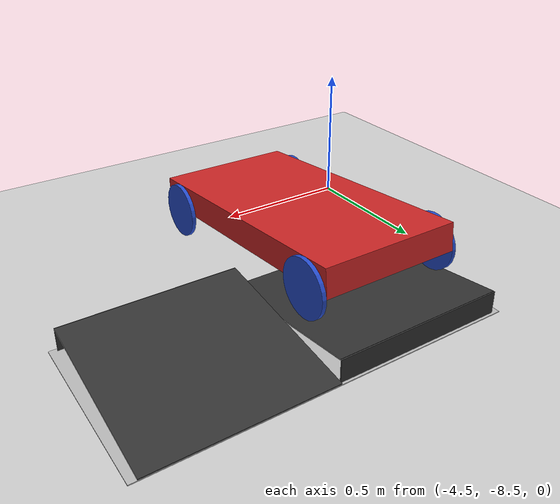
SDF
<sdf version="1.6">
 <world name="default">
  <model name="ground_plane">
   <static>1</static>
   <link name="link">
    <collision name="collision">
     <geometry><plane><normal>0 0 1</normal><size>100 100</size></plane></geometry>
     <surface>
      <contact><collide_bitmask>65535</collide_bitmask></contact>
      <friction><ode><mu>100</mu><mu2>50</mu2></ode></friction>
     </surface>
    </collision>
    <visual name="visual">
     <cast_shadows>0</cast_shadows>
     <geometry><plane><normal>0 0 1</normal><size>100 100</size></plane></geometry>
     <material>
      <script><uri>file://media/materials/scripts/gazebo.material</uri><name>Gazebo/Grey</name></script>
     </material>
    </visual>
   </link>
  </model>
  <model name="4wheeler">
   <link name="link_0">
    <pose>0 0 0.04 0 -0 0</pose>
    <inertial>
     <mass>1</mass>
     <inertia>
      <ixx>0.166667</ixx>
      <ixy>0</ixy>
      <ixz>0</ixz>
      <iyy>0.166667</iyy>
      <iyz>0</iyz>
      <izz>0.166667</izz>
     </inertia>
    </inertial>
    <visual name="visual">
     <geometry><box><size>1 0.5 0.1</size></box></geometry>
     <material>
      <lighting>1</lighting>
      <script><uri>file://media/materials/scripts/gazebo.material</uri><name>Gazebo/RedBright</name></script>
      <shader type="vertex"><normal_map>__default__</normal_map></shader>
     </material>
    </visual>
    <collision name="collision">
     <geometry><box><size>1 0.5 0.1</size></box></geometry>
     <surface>
      <friction>
       <ode><mu>1</mu><mu2>1</mu2><fdir1>0 0 0</fdir1><slip1>0</slip1><slip2>0</slip2></ode>
       <torsional>
        <coefficient>1</coefficient>
        <patch_radius>0</patch_radius>
        <surface_radius>0</surface_radius>
        <use_patch_radius>1</use_patch_radius>
        <ode><slip>0</slip></ode>
       </torsional>
      </friction>
      <bounce><restitution_coefficient>0</restitution_coefficient><threshold>1e+06</threshold></bounce>
      <contact>
       <collide_without_contact>0</collide_without_contact>
       <collide_without_contact_bitmask>1</collide_without_contact_bitmask>
       <collide_bitmask>1</collide_bitmask>
       <ode>
        <soft_cfm>0</soft_cfm>
        <soft_erp>0.2</soft_erp>
        <kp>1e+13</kp>
        <kd>1</kd>
        <max_vel>0.01</max_vel>
        <min_depth>0</min_depth>
       </ode>
       <bullet>
        <split_impulse>1</split_impulse>
        <split_impulse_penetration_threshold>-0.01</split_impulse_penetration_threshold>
        <soft_cfm>0</soft_cfm>
        <soft_erp>0.2</soft_erp>
        <kp>1e+13</kp>
        <kd>1</kd>
       </bullet>
      </contact>
     </surface>
    </collision>
   </link>
   <link name="link_1">
    <pose>0.4 0.2575 -0.01 1.5708 -0 0</pose>
    <inertial>
     <mass>1</mass>
     <inertia><ixx>0.145833</ixx><ixy>0</ixy><ixz>0</ixz><iyy>0.145833</iyy><iyz>0</iyz><izz>0.125</izz></inertia>
    </inertial>
    <visual name="visual">
     <geometry><cylinder><radius>0.1</radius><length>0.015</length></cylinder></geometry>
     <material>
      <lighting>1</lighting>
      <script><uri>file://media/materials/scripts/gazebo.material</uri><name>Gazebo/Blue</name></script>
      <shader type="vertex"><normal_map>__default__</normal_map></shader>
     </material>
    </visual>
    <collision name="collision">
     <geometry><cylinder><radius>0.1</radius><length>0.015</length></cylinder></geometry>
     <surface>
      <friction>
       <ode><mu>1</mu><mu2>1</mu2><fdir1>0 0 0</fdir1><slip1>0</slip1><slip2>0</slip2></ode>
       <torsional>
        <coefficient>1</coefficient>
        <patch_radius>0</patch_radius>
        <surface_radius>0</surface_radius>
        <use_patch_radius>1</use_patch_radius>
        <ode><slip>0</slip></ode>
       </torsional>
      </friction>
      <bounce><restitution_coefficient>0</restitution_coefficient><threshold>1e+06</threshold></bounce>
      <contact>
       <collide_without_contact>0</collide_without_contact>
       <collide_without_contact_bitmask>1</collide_without_contact_bitmask>
       <collide_bitmask>1</collide_bitmask>
       <ode>
        <soft_cfm>0</soft_cfm>
        <soft_erp>0.2</soft_erp>
        <kp>1e+13</kp>
        <kd>1</kd>
        <max_vel>0.01</max_vel>
        <min_depth>0</min_depth>
       </ode>
       <bullet>
        <split_impulse>1</split_impulse>
        <split_impulse_penetration_threshold>-0.01</split_impulse_penetration_threshold>
        <soft_cfm>0</soft_cfm>
        <soft_erp>0.2</soft_erp>
        <kp>1e+13</kp>
        <kd>1</kd>
       </bullet>
      </contact>
     </surface>
    </collision>
   </link>
   <link name="link_1_clone">
    <pose>-0.4 0.2575 -0.01 1.5708 -0 0</pose>
    <inertial>
     <mass>1</mass>
     <inertia><ixx>0.145833</ixx><ixy>0</ixy><ixz>0</ixz><iyy>0.145833</iyy><iyz>0</iyz><izz>0.125</izz></inertia>
    </inertial>
    <visual name="visual">
     <geometry><cylinder><radius>0.1</radius><length>0.015</length></cylinder></geometry>
     <material>
      <lighting>1</lighting>
      <script><uri>file://media/materials/scripts/gazebo.material</uri><name>Gazebo/Blue</name></script>
      <shader type="vertex"><normal_map>__default__</normal_map></shader>
     </material>
    </visual>
    <collision name="collision">
     <geometry><cylinder><radius>0.1</radius><length>0.015</length></cylinder></geometry>
     <surface>
      <friction>
       <ode><mu>1</mu><mu2>1</mu2><fdir1>0 0 0</fdir1><slip1>0</slip1><slip2>0</slip2></ode>
       <torsional>
        <coefficient>1</coefficient>
        <patch_radius>0</patch_radius>
        <surface_radius>0</surface_radius>
        <use_patch_radius>1</use_patch_radius>
        <ode><slip>0</slip></ode>
       </torsional>
      </friction>
      <bounce><restitution_coefficient>0</restitution_coefficient><threshold>1e+06</threshold></bounce>
      <contact>
       <collide_without_contact>0</collide_without_contact>
       <collide_without_contact_bitmask>1</collide_without_contact_bitmask>
       <collide_bitmask>1</collide_bitmask>
       <ode>
        <soft_cfm>0</soft_cfm>
        <soft_erp>0.2</soft_erp>
        <kp>1e+13</kp>
        <kd>1</kd>
        <max_vel>0.01</max_vel>
        <min_depth>0</min_depth>
       </ode>
       <bullet>
        <split_impulse>1</split_impulse>
        <split_impulse_penetration_threshold>-0.01</split_impulse_penetration_threshold>
        <soft_cfm>0</soft_cfm>
        <soft_erp>0.2</soft_erp>
        <kp>1e+13</kp>
        <kd>1</kd>
       </bullet>
      </contact>
     </surface>
    </collision>
   </link>
   <link name="link_1_clone_0">
    <pose>0.4 -0.257501 -0.01 1.5708 -0 0</pose>
    <inertial>
     <mass>1</mass>
     <inertia><ixx>0.145833</ixx><ixy>0</ixy><ixz>0</ixz><iyy>0.145833</iyy><iyz>0</iyz><izz>0.125</izz></inertia>
    </inertial>
    <visual name="visual">
     <geometry><cylinder><radius>0.1</radius><length>0.015</length></cylinder></geometry>
     <material>
      <lighting>1</lighting>
      <script><uri>file://media/materials/scripts/gazebo.material</uri><name>Gazebo/Blue</name></script>
      <shader type="vertex"><normal_map>__default__</normal_map></shader>
     </material>
    </visual>
    <collision name="collision">
     <geometry><cylinder><radius>0.1</radius><length>0.015</length></cylinder></geometry>
     <surface>
      <friction>
       <ode><mu>1</mu><mu2>1</mu2><fdir1>0 0 0</fdir1><slip1>0</slip1><slip2>0</slip2></ode>
       <torsional>
        <coefficient>1</coefficient>
        <patch_radius>0</patch_radius>
        <surface_radius>0</surface_radius>
        <use_patch_radius>1</use_patch_radius>
        <ode><slip>0</slip></ode>
       </torsional>
      </friction>
      <bounce><restitution_coefficient>0</restitution_coefficient><threshold>1e+06</threshold></bounce>
      <contact>
       <collide_without_contact>0</collide_without_contact>
       <collide_without_contact_bitmask>1</collide_without_contact_bitmask>
       <collide_bitmask>1</collide_bitmask>
       <ode>
        <soft_cfm>0</soft_cfm>
        <soft_erp>0.2</soft_erp>
        <kp>1e+13</kp>
        <kd>1</kd>
        <max_vel>0.01</max_vel>
        <min_depth>0</min_depth>
       </ode>
       <bullet>
        <split_impulse>1</split_impulse>
        <split_impulse_penetration_threshold>-0.01</split_impulse_penetration_threshold>
        <soft_cfm>0</soft_cfm>
        <soft_erp>0.2</soft_erp>
        <kp>1e+13</kp>
        <kd>1</kd>
       </bullet>
      </contact>
     </surface>
    </collision>
   </link>
   <link name="link_1_clone_1">
    <pose>-0.4 -0.257501 -0.01 1.5708 -0 0</pose>
    <inertial>
     <mass>1</mass>
     <inertia><ixx>0.145833</ixx><ixy>0</ixy><ixz>0</ixz><iyy>0.145833</iyy><iyz>0</iyz><izz>0.125</izz></inertia>
    </inertial>
    <visual name="visual">
     <geometry><cylinder><radius>0.1</radius><length>0.015</length></cylinder></geometry>
     <material>
      <lighting>1</lighting>
      <script><uri>file://media/materials/scripts/gazebo.material</uri><name>Gazebo/Blue</name></script>
      <shader type="vertex"><normal_map>__default__</normal_map></shader>
     </material>
    </visual>
    <collision name="collision">
     <geometry><cylinder><radius>0.1</radius><length>0.015</length></cylinder></geometry>
     <surface>
      <friction>
       <ode><mu>1</mu><mu2>1</mu2><fdir1>0 0 0</fdir1><slip1>0</slip1><slip2>0</slip2></ode>
       <torsional>
        <coefficient>1</coefficient>
        <patch_radius>0</patch_radius>
        <surface_radius>0</surface_radius>
        <use_patch_radius>1</use_patch_radius>
        <ode><slip>0</slip></ode>
       </torsional>
      </friction>
      <bounce><restitution_coefficient>0</restitution_coefficient><threshold>1e+06</threshold></bounce>
      <contact>
       <collide_without_contact>0</collide_without_contact>
       <collide_without_contact_bitmask>1</collide_without_contact_bitmask>
       <collide_bitmask>1</collide_bitmask>
       <ode>
        <soft_cfm>0</soft_cfm>
        <soft_erp>0.2</soft_erp>
        <kp>1e+13</kp>
        <kd>1</kd>
        <max_vel>0.01</max_vel>
        <min_depth>0</min_depth>
       </ode>
       <bullet>
        <split_impulse>1</split_impulse>
        <split_impulse_penetration_threshold>-0.01</split_impulse_penetration_threshold>
        <soft_cfm>0</soft_cfm>
        <soft_erp>0.2</soft_erp>
        <kp>1e+13</kp>
        <kd>1</kd>
       </bullet>
      </contact>
     </surface>
    </collision>
   </link>
   <joint name="link_0_JOINT_0" type="revolute">
    <parent>link_0</parent>
    <child>link_1</child>
    <axis>
     <xyz>0 0 1</xyz>
     <use_parent_model_frame>0</use_parent_model_frame>
     <limit>
      <lower>-1.79769e+308</lower>
      <upper>1.79769e+308</upper>
      <effort>-1</effort>
      <velocity>-1</velocity>
     </limit>
     <dynamics>
      <spring_reference>0</spring_reference>
      <spring_stiffness>0</spring_stiffness>
      <damping>0</damping>
     </dynamics>
    </axis>
    <physics>
     <ode><limit><cfm>0</cfm><erp>0.2</erp></limit><suspension><cfm>0</cfm><erp>0.2</erp></suspension></ode>
    </physics>
   </joint>
   <joint name="link_0_JOINT_1" type="revolute">
    <parent>link_0</parent>
    <child>link_1_clone_1</child>
    <axis>
     <xyz>0 0 1</xyz>
     <use_parent_model_frame>0</use_parent_model_frame>
     <limit>
      <lower>-1.79769e+308</lower>
      <upper>1.79769e+308</upper>
      <effort>-1</effort>
      <velocity>-1</velocity>
     </limit>
     <dynamics>
      <spring_reference>0</spring_reference>
      <spring_stiffness>0</spring_stiffness>
      <damping>0</damping>
     </dynamics>
    </axis>
    <physics>
     <ode><limit><cfm>0</cfm><erp>0.2</erp></limit><suspension><cfm>0</cfm><erp>0.2</erp></suspension></ode>
    </physics>
   </joint>
   <joint name="link_0_JOINT_2" type="revolute">
    <parent>link_0</parent>
    <child>link_1_clone</child>
    <axis>
     <xyz>0 0 1</xyz>
     <use_parent_model_frame>0</use_parent_model_frame>
     <limit>
      <lower>-1.79769e+308</lower>
      <upper>1.79769e+308</upper>
      <effort>-1</effort>
      <velocity>-1</velocity>
     </limit>
     <dynamics>
      <spring_reference>0</spring_reference>
      <spring_stiffness>0</spring_stiffness>
      <damping>0</damping>
     </dynamics>
    </axis>
    <physics>
     <ode><limit><cfm>0</cfm><erp>0.2</erp></limit><suspension><cfm>0</cfm><erp>0.2</erp></suspension></ode>
    </physics>
   </joint>
   <joint name="link_0_JOINT_3" type="revolute">
    <parent>link_0</parent>
    <child>link_1_clone_0</child>
    <axis>
     <xyz>0 0 1</xyz>
     <use_parent_model_frame>0</use_parent_model_frame>
     <limit>
      <lower>-1.79769e+308</lower>
      <upper>1.79769e+308</upper>
      <effort>-1</effort>
      <velocity>-1</velocity>
     </limit>
     <dynamics>
      <spring_reference>0</spring_reference>
      <spring_stiffness>0</spring_stiffness>
      <damping>0</damping>
     </dynamics>
    </axis>
    <physics>
     <ode><limit><cfm>0</cfm><erp>0.2</erp></limit><suspension><cfm>0</cfm><erp>0.2</erp></suspension></ode>
    </physics>
   </joint>
   <static>0</static>
   <pose>-4.03739 -8.07348 0.15732 -0.003662 -0.097651 1.57839</pose>
  </model>
  <model name="frc2016_ramparts">
   <static>1</static>
   <link name="link">
    <visual name="platform">
     <pose>0 0 0.06967 0 -0 0</pose>
     <geometry><box><size>1.27 0.5969 0.003175</size></box></geometry>
    </visual>
    <collision name="platform">
     <pose>0 0 0.06967 0 -0 0</pose>
     <geometry><box><size>1.27 0.5969 0.003175</size></box></geometry>
    </collision>
    <visual name="ramp1">
     <pose>0.30472 0.00588 0.1109 -0.13 0 0</pose>
     <geometry><box><size>0.60957 0.588891 0.00462</size></box></geometry>
     <material><ambient>0.2 0.2 0.2 1</ambient><diffuse>0.2 0.2 0.2 1</diffuse></material>
    </visual>
    <collision name="ramp1">
     <pose>0.30472 0.00588 0.1109 -0.13 0 0</pose>
     <geometry><box><size>0.60957 0.588891 0.00462</size></box></geometry>
    </collision>
    <visual name="up1">
     <pose>0.30472 -0.28806 0.11072 0 -0 0</pose>
     <geometry><box><size>0.60957 0.00462 0.07872</size></box></geometry>
     <material><ambient>0.2 0.2 0.2 1</ambient><diffuse>0.2 0.2 0.2 1</diffuse></material>
    </visual>
    <collision name="up1">
     <pose>0.30472 -0.28806 0.11072 0 -0 0</pose>
     <geometry><box><size>0.60957 0.00462 0.07872</size></box></geometry>
    </collision>
    <visual name="ramp2">
     <pose>-0.30472 -0.00619 0.1109 0.13 -0 0</pose>
     <geometry><box><size>0.60957 0.588891 0.00462</size></box></geometry>
     <material><ambient>0.2 0.2 0.2 1</ambient><diffuse>0.2 0.2 0.2 1</diffuse></material>
    </visual>
    <collision name="ramp2">
     <pose>-0.30472 -0.00619 0.1109 0.13 -0 0</pose>
     <geometry><box><size>0.60957 0.588891 0.00462</size></box></geometry>
    </collision>
    <visual name="up2">
     <pose>-0.30472 0.28806 0.11072 0 -0 0</pose>
     <geometry><box><size>0.60957 0.00462 0.07872</size></box></geometry>
     <material><ambient>0.2 0.2 0.2 1</ambient><diffuse>0.2 0.2 0.2 1</diffuse></material>
    </visual>
    <collision name="up2">
     <pose>-0.30472 0.28806 0.11072 0 -0 0</pose>
     <geometry><box><size>0.60957 0.00462 0.07872</size></box></geometry>
    </collision>
   </link>
   <pose>-3.74841 -7.73292 -0.06049 0 -0 0</pose>
  </model>
 </world>
</sdf>
